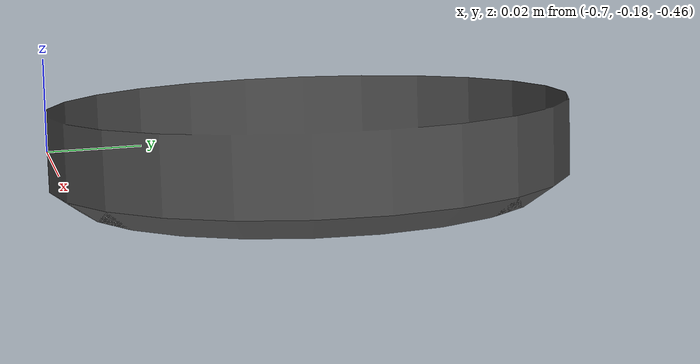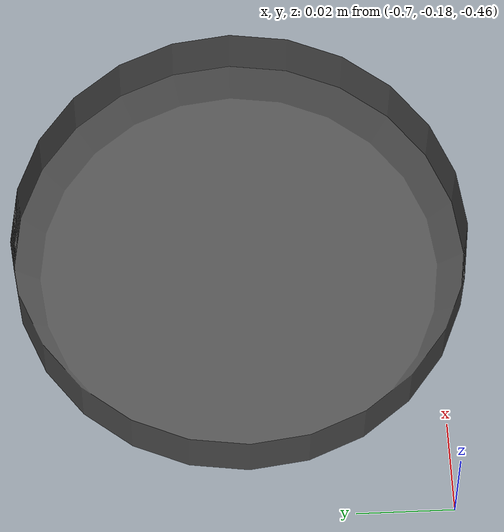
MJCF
<mujoco model="original-27">
  <default>
    <default class="visual">
      <geom group="2" type="mesh" contype="0" conaffinity="0"/>
    </default>
    <default class="collision">
      <geom group="3" type="mesh"/>
    </default>
  </default>
  <asset>
    <material name="material_0_0" specular="0.06666666666666667" shininess="0.03" rgba="0.8 0.8 0.8 1"/>
    <material name="material_1_0" specular="0.06666666666666667" shininess="0.03" rgba="0.3176470588235294 0.3176470588235294 0.3176470588235294 1"/>
    <mesh file="original-27_0.obj"/>
    <mesh file="original-27_1.obj"/>
  </asset>
  <worldbody>
    <body name="original-27">
      <geom mesh="original-27_0" material="material_1_0" class="visual"/>
      <geom mesh="original-27_1" material="material_0_0" class="visual"/>
      <geom mesh="original-27_0" class="collision"/>
      <geom mesh="original-27_1" class="collision"/>
    </body>
  </worldbody>
</mujoco>
